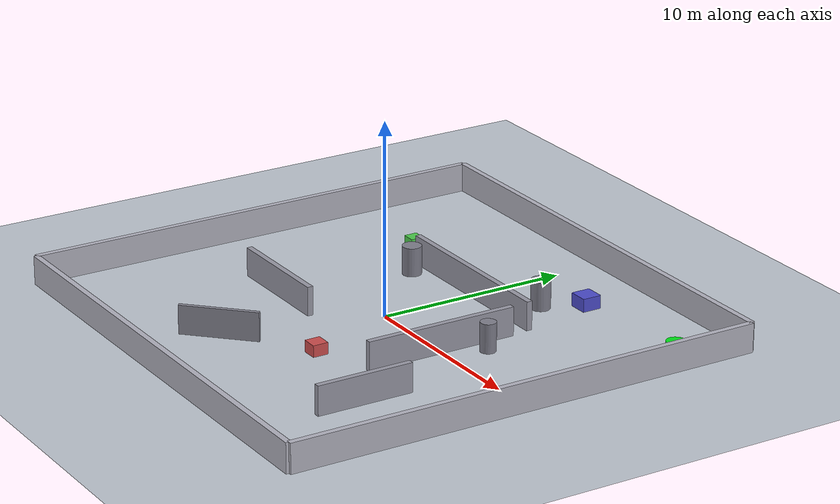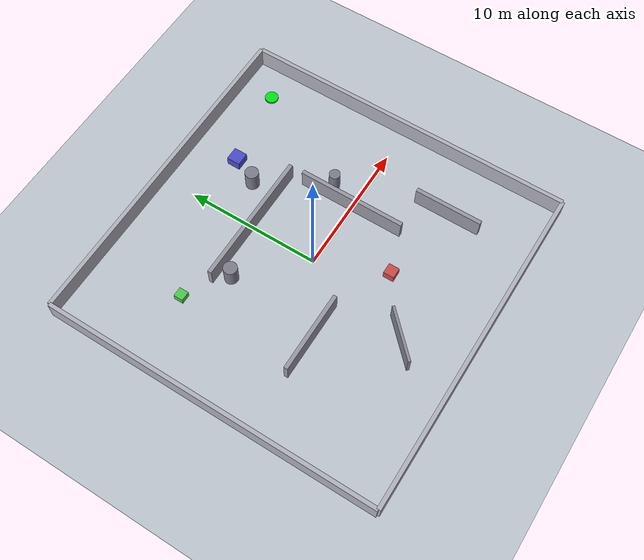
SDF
<?xml version="1.0"?>
<sdf version="1.8">
  <world name="maze_world">

    <!-- 1) Visuals, ground, lighting  -->

    <!-- Enhanced scene with fog for depth -->
    <scene>
      <ambient>0.45 0.45 0.5 1</ambient>
      <background>0.85 0.9 1.0 1</background>
      <shadows>true</shadows>
      <fog>
        <color>0.9 0.95 1.0 1</color>
        <start>20</start>
        <end>50</end>
        <density>0.05</density>
      </fog>
    </scene>

    <!-- Larger ground plane with subtle texture and friction -->
    <model name="ground_plane">
      <static>true</static>
      <pose>0 0 0 0 0 0</pose>
      <link name="link">
        <collision name="collision">
          <geometry>
            <plane>
              <normal>0 0 1</normal>
              <size>100 100</size>
            </plane>
          </geometry>
          <surface>
            <friction>
              <ode>
                <mu>0.8</mu>
                <mu2>0.8</mu2>
              </ode>
            </friction>
          </surface>
        </collision>
        <visual name="visual">
          <geometry>
            <plane>
              <normal>0 0 1</normal>
              <size>100 100</size>
            </plane>
          </geometry>
          <material>
            <ambient>0.75 0.78 0.82 1</ambient>
            <diffuse>0.75 0.78 0.82 1</diffuse>
            <specular>0.05 0.05 0.05 1</specular>
            <emissive>0.01 0.01 0.02 1</emissive>
          </material>
        </visual>
      </link>
    </model>

    <!-- Soft warm sun with improved direction for better shadows -->
    <light type="directional" name="sun">
      <cast_shadows>true</cast_shadows>
      <pose>0 0 50 0 0 0</pose>
      <diffuse>1 0.98 0.92 1</diffuse>
      <specular>0.3 0.3 0.3 1</specular>
      <attenuation>
        <range>100</range>
        <constant>0.9</constant>
        <linear>0.01</linear>
        <quadratic>0.001</quadratic>
      </attenuation>
      <direction>-0.5 0.2 -1</direction>
    </light>

    <!-- Secondary point light for ambient fill -->
    <light type="point" name="ambient_light">
      <cast_shadows>false</cast_shadows>
      <pose>0 0 10 0 0 0</pose>
      <diffuse>0.4 0.4 0.45 1</diffuse>
      <specular>0.1 0.1 0.1 1</specular>
      <attenuation>
        <range>50</range>
        <constant>0.8</constant>
        <linear>0.02</linear>
        <quadratic>0.001</quadratic>
      </attenuation>
    </light>

    <!-- 2) Maze walls  -->

    <!-- Perimeter walls: 25m x 25m room, 1.5m tall for better sensor interaction -->
    <model name="wall_north">
      <pose>0 12.5 0.75 0 0 0</pose>
      <static>true</static>
      <link name="link">
        <visual name="v"><geometry><box><size>25 0.3 1.5</size></box></geometry><material><ambient>0.7 0.7 0.75 1</ambient><emissive>0.05 0.05 0.05 1</emissive></material></visual>
        <collision name="c"><geometry><box><size>25 0.3 1.5</size></box></geometry></collision>
      </link>
    </model>

    <model name="wall_south">
      <pose>0 -12.5 0.75 0 0 0</pose>
      <static>true</static>
      <link name="link">
        <visual name="v"><geometry><box><size>25 0.3 1.5</size></box></geometry><material><ambient>0.7 0.7 0.75 1</ambient><emissive>0.05 0.05 0.05 1</emissive></material></visual>
        <collision name="c"><geometry><box><size>25 0.3 1.5</size></box></geometry></collision>
      </link>
    </model>

    <model name="wall_east">
      <pose>12.5 0 0.75 0 0 0</pose>
      <static>true</static>
      <link name="link">
        <visual name="v"><geometry><box><size>0.3 25 1.5</size></box></geometry><material><ambient>0.7 0.7 0.75 1</ambient><emissive>0.05 0.05 0.05 1</emissive></material></visual>
        <collision name="c"><geometry><box><size>0.3 25 1.5</size></box></geometry></collision>
      </link>
    </model>

    <model name="wall_west">
      <pose>-12.5 0 0.75 0 0 0</pose>
      <static>true</static>
      <link name="link">
        <visual name="v"><geometry><box><size>0.3 25 1.5</size></box></geometry><material><ambient>0.7 0.7 0.75 1</ambient><emissive>0.05 0.05 0.05 1</emissive></material></visual>
        <collision name="c"><geometry><box><size>0.3 25 1.5</size></box></geometry></collision>
      </link>
    </model>

    <!-- Inner maze walls: Creating paths, dead ends, and corridors -->
    <model name="wall_inner_1">
      <pose>0 5 0.75 0 0 0</pose>
      <static>true</static>
      <link name="link">
        <visual name="v"><geometry><box><size>10 0.3 1.5</size></box></geometry><material><ambient>0.6 0.6 0.65 1</ambient><emissive>0.03 0.03 0.03 1</emissive></material></visual>
        <collision name="c"><geometry><box><size>10 0.3 1.5</size></box></geometry></collision>
      </link>
    </model>

    <model name="wall_inner_2">
      <pose>5 0 0.75 0 0 1.5708</pose> <!-- Rotated for vertical barrier -->
      <static>true</static>
      <link name="link">
        <visual name="v"><geometry><box><size>8 0.3 1.5</size></box></geometry><material><ambient>0.6 0.6 0.65 1</ambient><emissive>0.03 0.03 0.03 1</emissive></material></visual>
        <collision name="c"><geometry><box><size>8 0.3 1.5</size></box></geometry></collision>
      </link>
    </model>

    <model name="wall_inner_3">
      <pose>-5 -3 0.75 0 0 0</pose>
      <static>true</static>
      <link name="link">
        <visual name="v"><geometry><box><size>6 0.3 1.5</size></box></geometry><material><ambient>0.6 0.6 0.65 1</ambient><emissive>0.03 0.03 0.03 1</emissive></material></visual>
        <collision name="c"><geometry><box><size>6 0.3 1.5</size></box></geometry></collision>
      </link>
    </model>

    <!-- New inner wall for added complexity -->
    <model name="wall_inner_4">
      <pose>8 -6 0.75 0 0 1.5708</pose> <!-- Vertical barrier near goal -->
      <static>true</static>
      <link name="link">
        <visual name="v"><geometry><box><size>5 0.3 1.5</size></box></geometry><material><ambient>0.6 0.6 0.65 1</ambient><emissive>0.03 0.03 0.03 1</emissive></material></visual>
        <collision name="c"><geometry><box><size>5 0.3 1.5</size></box></geometry></collision>
      </link>
    </model>

    <!-- Pillars as additional obstacles -->
    <model name="pillar_1">
      <pose>3 7 0.75 0 0 0</pose>
      <static>true</static>
      <link name="link">
        <visual name="v"><geometry><cylinder><radius>0.5</radius><length>1.5</length></cylinder></geometry><material><ambient>0.5 0.5 0.55 1</ambient></material></visual>
        <collision name="c"><geometry><cylinder><radius>0.5</radius><length>1.5</length></cylinder></geometry></collision>
      </link>
    </model>

    <model name="pillar_2">
      <pose>-4 4 0.75 0 0 0</pose>
      <static>true</static>
      <link name="link">
        <visual name="v"><geometry><cylinder><radius>0.5</radius><length>1.5</length></cylinder></geometry><material><ambient>0.5 0.5 0.55 1</ambient></material></visual>
        <collision name="c"><geometry><cylinder><radius>0.5</radius><length>1.5</length></cylinder></geometry></collision>
      </link>
    </model>

    <!-- New pillar for more obstacles -->
    <model name="pillar_3">
      <pose>6 2 0.75 0 0 0</pose>
      <static>true</static>
      <link name="link">
        <visual name="v"><geometry><cylinder><radius>0.4</radius><length>1.5</length></cylinder></geometry><material><ambient>0.5 0.5 0.55 1</ambient></material></visual>
        <collision name="c"><geometry><cylinder><radius>0.4</radius><length>1.5</length></cylinder></geometry></collision>
      </link>
    </model>

    <!-- Curved barrier (using a mesh for curve, approximated as a thin wall) -->
    <model name="curved_barrier">
      <pose>-2 -8 0.75 0 0 0.7854</pose> <!-- Slight rotation for curve effect -->
      <static>true</static>
      <link name="link">
        <visual name="v"><geometry><box><size>4 0.2 1.5</size></box></geometry><material><ambient>0.55 0.55 0.6 1</ambient></material></visual>
        <collision name="c"><geometry><box><size>4 0.2 1.5</size></box></geometry></collision>
      </link>
    </model>

    <!-- Dynamic obstacles (movable boxes for variability) -->
    <model name="dynamic_box_1">
      <pose>2 -5 0.3 0 0 0</pose>
      <link name="link">
        <inertial><mass>5</mass></inertial>
        <visual name="v"><geometry><box><size>0.8 0.8 0.6</size></box></geometry><material><ambient>0.8 0.3 0.3 1</ambient></material></visual>
        <collision name="c"><geometry><box><size>0.8 0.8 0.6</size></box></geometry></collision>
      </link>
    </model>

    <model name="dynamic_box_2">
      <pose>-7 6 0.3 0 0 0</pose>
      <link name="link">
        <inertial><mass>4</mass></inertial>
        <visual name="v"><geometry><box><size>0.7 0.7 0.5</size></box></geometry><material><ambient>0.3 0.8 0.3 1</ambient></material></visual>
        <collision name="c"><geometry><box><size>0.7 0.7 0.5</size></box></geometry></collision>
      </link>
    </model>

    <model name="dynamic_box_3">
      <pose>4 9 0.3 0 0 0</pose>
      <link name="link">
        <inertial><mass>6</mass></inertial>
        <visual name="v"><geometry><box><size>1.0 1.0 0.7</size></box></geometry><material><ambient>0.3 0.3 0.8 1</ambient></material></visual>
        <collision name="c"><geometry><box><size>1.0 1.0 0.7</size></box></geometry></collision>
      </link>
    </model>

    <!-- 3) Goal marker  -->
    <model name="goal_marker">
      <pose>10 10 0.1 0 0 0</pose>
      <static>true</static>
      <link name="link">
        <visual name="v">
          <geometry><cylinder><radius>0.5</radius><length>0.15</length></cylinder></geometry>
          <material>
            <ambient>0.0 0.9 0.1 1</ambient>
            <emissive>0.0 0.6 0.0 1</emissive>
          </material>
        </visual>
      </link>
    </model>

    <!-- 4) World-level systems   -->

    <!-- Sensors plugin (powers all sensors) -->
    <plugin filename="ignition-gazebo-sensors-system" name="ignition::gazebo::systems::Sensors">
      <render_engine>ogre2</render_engine>
    </plugin>

    <!-- Essential systems: Physics, SceneBroadcaster, UserCommands (for resets) -->
    <plugin filename="ignition-gazebo-physics-system" name="ignition::gazebo::systems::Physics"/>
    <plugin filename="ignition-gazebo-scene-broadcaster-system" name="ignition::gazebo::systems::SceneBroadcaster"/>
    <plugin filename="ignition-gazebo-user-commands-system" name="ignition::gazebo::systems::UserCommands"/>

  </world>
</sdf>
